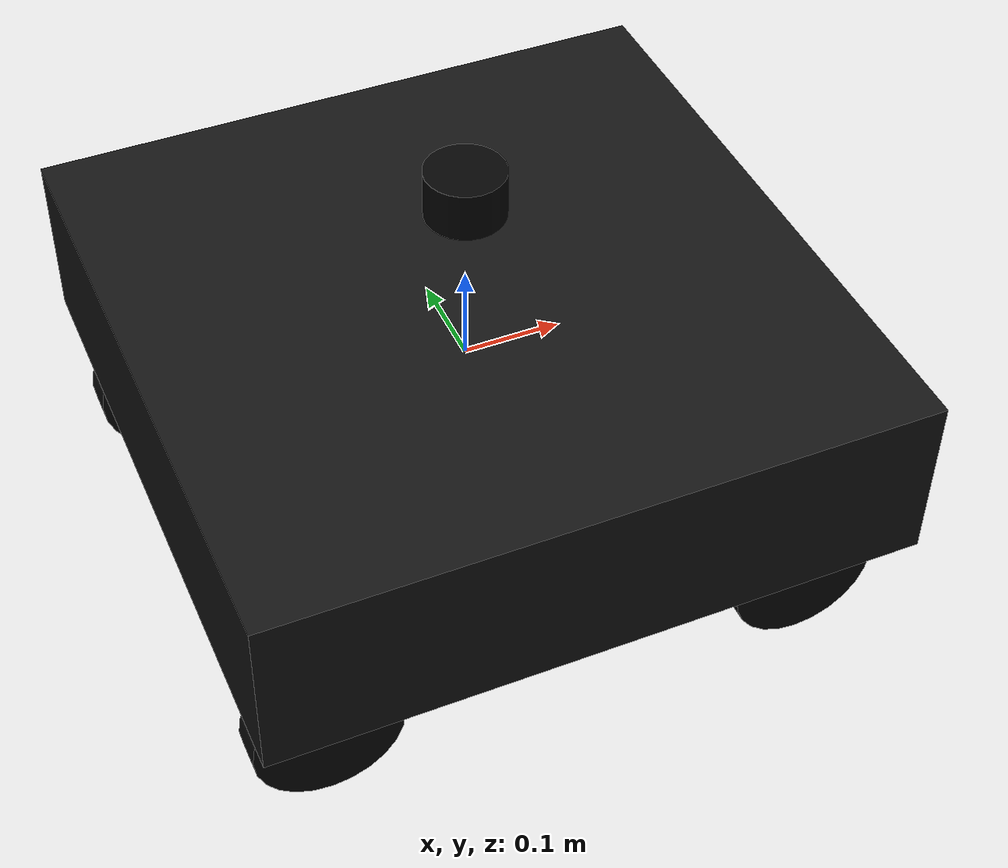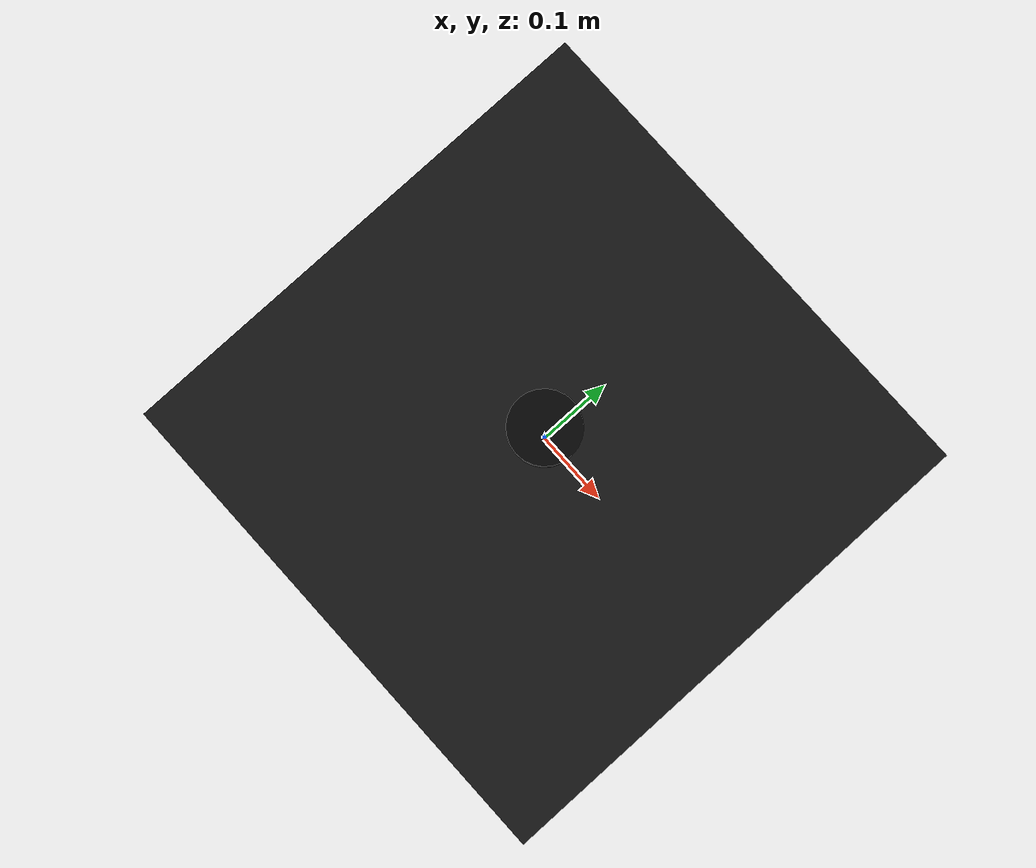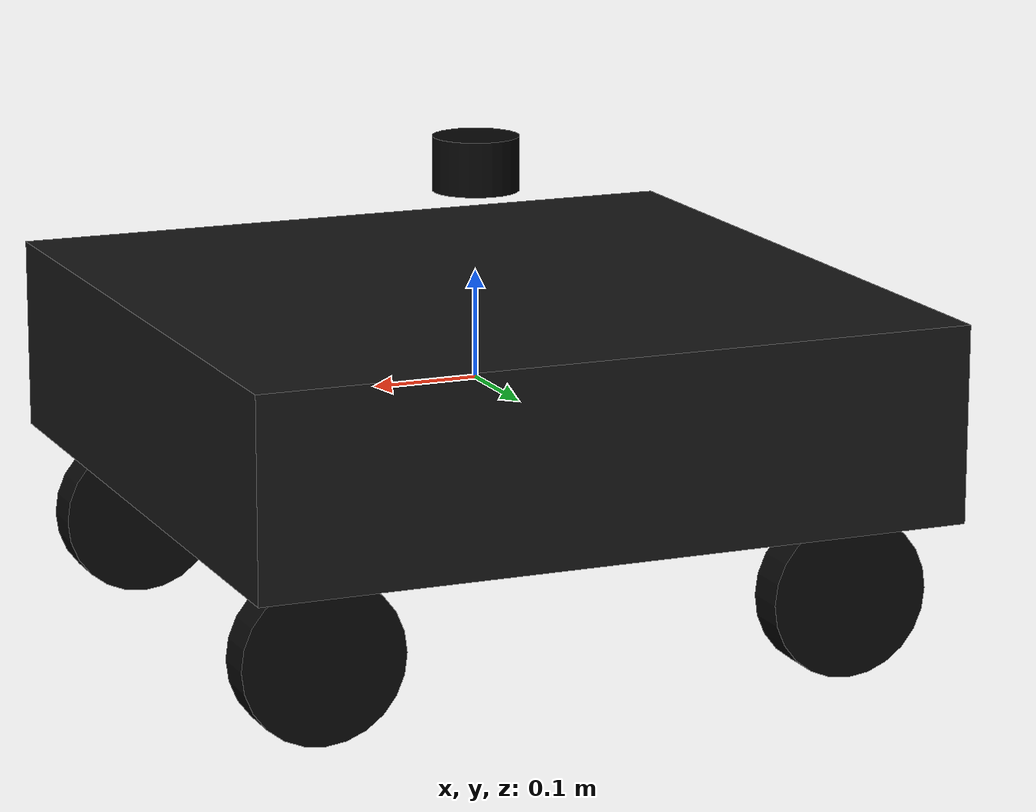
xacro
<?xml version="1.0"?>

<robot xmlns:xacro="http://www.ros.org/wiki/xacro" name="tr">

<xacro:property name="chassis_x" value="0.66"/>
<xacro:property name="chassis_y" value="0.66"/>
<xacro:property name="chassis_z" value="0.18"/>

<xacro:property name="wheel_radius" value="0.075"/>
<xacro:property name="wheel_width" value="0.04"/>

<xacro:property name="wheel_x" value="0.25"/>
<xacro:property name="wheel_y" value="0.25"/>

<link name="base_link">

<visual>
<geometry>
<box size="${chassis_x} ${chassis_y} ${chassis_z}"/>
</geometry>
<material name="black">
<color rgba="0.08 0.08 0.08 1"/>
</material>
</visual>

<collision>
<geometry>
<box size="${chassis_x} ${chassis_y} ${chassis_z}"/>
</geometry>
</collision>

<inertial>
<mass value="35.0"/>
<origin xyz="0 0 0"/>
<inertia
ixx="1.0"
iyy="1.0"
izz="1.0"
ixy="0"
ixz="0"
iyz="0"/>
</inertial>

</link>

<xacro:macro name="wheel" params="name x y">

<link name="${name}">

<visual>
<origin xyz="0 0 0" rpy="1.5708 0 0"/>
<geometry>
<cylinder radius="${wheel_radius}" length="${wheel_width}"/>
</geometry>
<material name="wheel_black">
<color rgba="0.03 0.03 0.03 1"/>
</material>
</visual>

<collision>
<origin xyz="0 0 0" rpy="1.5708 0 0"/>
<geometry>
<cylinder radius="${wheel_radius}" length="${wheel_width}"/>
</geometry>
</collision>

<inertial>
<mass value="1.0"/>
<origin xyz="0 0 0"/>
<inertia
ixx="0.01"
iyy="0.01"
izz="0.01"
ixy="0"
ixz="0"
iyz="0"/>
</inertial>

</link>

<joint name="${name}_joint" type="continuous">

<parent link="base_link"/>
<child link="${name}"/>

<origin xyz="${x} ${y} -0.165" rpy="0 0 0"/>

<axis xyz="0 1 0"/>

<limit effort="100" velocity="30"/>

</joint>

</xacro:macro>

<xacro:wheel
name="front_left_wheel"
x="${wheel_x}"
y="${wheel_y}"/>

<xacro:wheel
name="front_right_wheel"
x="${wheel_x}"
y="-${wheel_y}"/>

<xacro:wheel
name="rear_left_wheel"
x="-${wheel_x}"
y="${wheel_y}"/>

<xacro:wheel
name="rear_right_wheel"
x="-${wheel_x}"
y="-${wheel_y}"/>

<ros2_control name="TRSystem" type="system">

<hardware>
<plugin>gz_ros2_control/GazeboSimSystem</plugin>
</hardware>

<joint name="front_left_wheel_joint">
<command_interface name="velocity"/>
<state_interface name="position"/>
<state_interface name="velocity"/>
</joint>

<joint name="front_right_wheel_joint">
<command_interface name="velocity"/>
<state_interface name="position"/>
<state_interface name="velocity"/>
</joint>

<joint name="rear_left_wheel_joint">
<command_interface name="velocity"/>
<state_interface name="position"/>
<state_interface name="velocity"/>
</joint>

<joint name="rear_right_wheel_joint">
<command_interface name="velocity"/>
<state_interface name="position"/>
<state_interface name="velocity"/>
</joint>

</ros2_control>

<gazebo>

<plugin
filename="libgz_ros2_control-system.so"
name="gz_ros2_control::GazeboSimROS2ControlPlugin">

<parameters>
$(find robocon2027_description)/config/tr_controllers.yaml
</parameters>

</plugin>

</gazebo>

<link name="lidar_link">

<visual>
<geometry>
<cylinder radius="0.04" length="0.05"/>
</geometry>
<material name="lidar_black">
<color rgba="0.02 0.02 0.02 1"/>
</material>
</visual>

<collision>
<geometry>
<cylinder radius="0.04" length="0.05"/>
</geometry>
</collision>

</link>

<joint name="lidar_joint" type="fixed">

<parent link="base_link"/>
<child link="lidar_link"/>

<origin xyz="0 0 0.20" rpy="0 0 0"/>

</joint>

<gazebo reference="lidar_link">

<sensor name="lidar" type="gpu_lidar">

<topic>scan</topic>
<update_rate>10</update_rate>

<lidar>

<scan>

<horizontal>
<samples>720</samples>
<resolution>1</resolution>
<min_angle>-3.14159265</min_angle>
<max_angle>3.14159265</max_angle>
</horizontal>

<vertical>
<samples>1</samples>
<resolution>1</resolution>
<min_angle>0</min_angle>
<max_angle>0</max_angle>
</vertical>

</scan>

<range>
<min>0.12</min>
<max>12.0</max>
<resolution>0.01</resolution>
</range>

</lidar>

<visualize>true</visualize>

</sensor>

</gazebo>

</robot>
